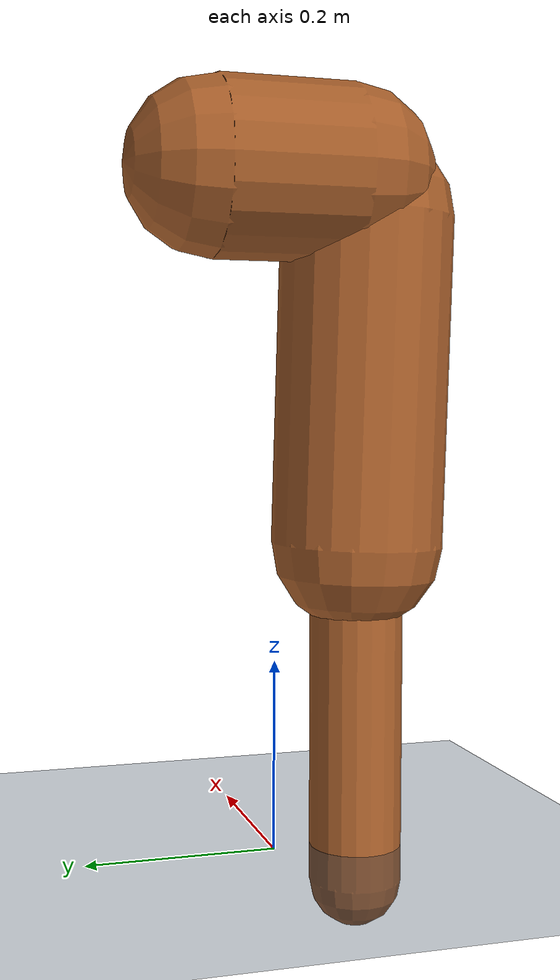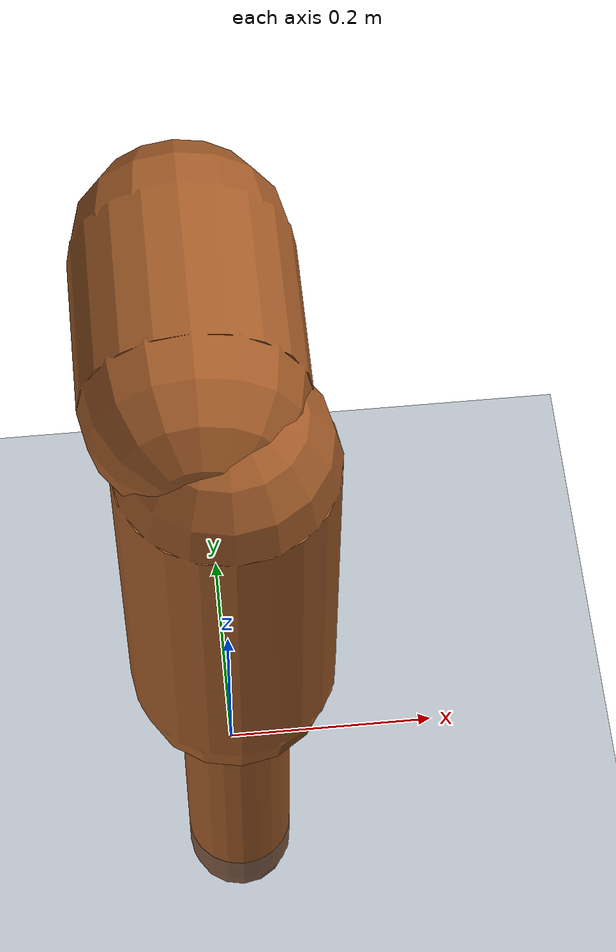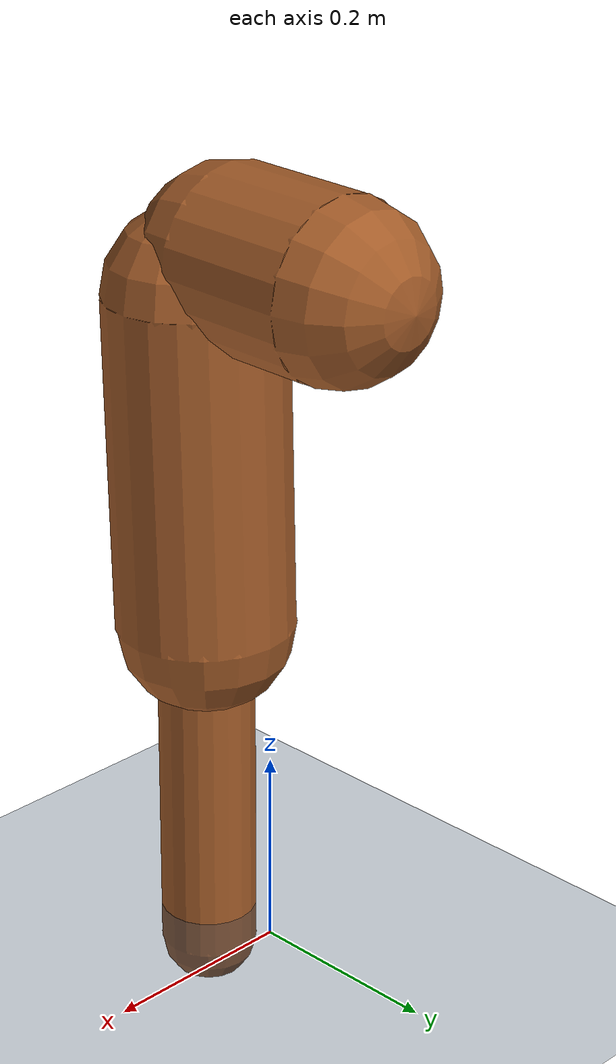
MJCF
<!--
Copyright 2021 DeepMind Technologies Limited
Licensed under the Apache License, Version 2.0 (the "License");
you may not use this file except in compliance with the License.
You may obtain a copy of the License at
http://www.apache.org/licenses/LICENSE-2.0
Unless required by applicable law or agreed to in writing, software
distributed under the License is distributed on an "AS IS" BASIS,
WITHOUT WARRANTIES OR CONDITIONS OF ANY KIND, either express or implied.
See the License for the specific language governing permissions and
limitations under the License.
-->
<mujoco model="SimpleLeg">
  <option timestep="0.005"/>

  <visual>
    <map force="0.1" zfar="30"/>
    <rgba haze="0.15 0.25 0.35 1"/>
    <global offwidth="2560" offheight="1440" elevation="-20" azimuth="120"/>
  </visual>

  <statistic center="0 0 0"/>

  <asset>
    <texture type="skybox" builtin="gradient" rgb1=".3 .5 .7" rgb2="0 0 0" width="32" height="512"/>
    <texture name="body" type="cube" builtin="flat" mark="cross" width="127" height="1278" rgb1="0.8 0.6 0.4" rgb2="0.8 0.6 0.4" markrgb="1 1 1" random="0.01"/>
    <material name="body" texture="body" texuniform="true" rgba="0.8 0.6 .4 1"/>
    <texture name="grid" type="2d" builtin="checker" width="512" height="512" rgb1=".1 .2 .3" rgb2=".2 .3 .4"/>
    <material name="grid" texture="grid" texrepeat="1 1" texuniform="true" reflectance=".2"/>
  </asset>

  <default>
    <motor ctrlrange="-1 1" ctrllimited="true"/>
  </default>

    <default>
    <motor ctrlrange="-1 1" ctrllimited="true"/>
    <default class="body">
      <!-- geoms -->
      <geom type="capsule" condim="1" friction=".7" solimp=".9 .99 .003" solref=".015 1" material="body"/>
      <default class="thigh">
        <geom size=".06"/>
      </default>
      <default class="shin">
        <geom fromto="0 0 0 0 0 -.3"  size=".049"/>
      </default>
      <default class="foot">
        <geom size=".027"/>
        <default class="foot1">
          <geom fromto="-.07 -.01 0 .14 -.03 0"/>
        </default>
        <default class="foot2">
          <geom fromto="-.07 .01 0 .14  .03 0"/>
        </default>
      </default>
      <default class="arm_upper">
        <geom size=".04"/>
      </default>
      <default class="arm_lower">
        <geom size=".031"/>
      </default>
      <default class="hand">
        <geom type="sphere" size=".04"/>
      </default>

      <!-- joints -->
      <joint type="hinge" damping=".2" stiffness="1" armature=".01" limited="true" solimplimit="0 .99 .01"/>
      <default class="joint_big">
        <joint damping="5" stiffness="10"/>
        <default class="hip_x">
          <joint range="-30 10"/>
        </default>
        <default class="hip_z">
          <joint range="-60 35"/>
        </default>
        <default class="hip_y">
          <joint axis="0 1 0" range="-150 20"/>
        </default>
        <default class="joint_big_stiff">
          <joint stiffness="20"/>
        </default>
      </default>
      <default class="knee">
        <joint pos="0 0 .02" axis="0 -1 0" range="-160 2"/>
      </default>
      <default class="ankle">
        <joint range="-50 50"/>
        <default class="ankle_y">
          <joint pos="0 0 .08" axis="0 1 0" stiffness="6"/>
        </default>
        <default class="ankle_x">
          <joint pos="0 0 .04" stiffness="3"/>
        </default>
      </default>
      <default class="shoulder">
        <joint range="-85 60"/>
      </default>
      <default class="elbow">
        <joint range="-100 50" stiffness="0"/>
      </default>
    </default>
  </default>

    <worldbody>
        <geom name="floor" size="0 0 .05" type="plane" material="grid" condim="3"/>
        <body name="torso" pos="0 0 0.7">
            <light name="top" pos="0 0 2" mode="trackcom"/>
            <joint name="root" axis="0 0 1"       range="-0.1 0.1"        type="slide" limited="true"/>
            <geom name="butt" fromto="-.02 -.07 0 -.02 .07 0" size=".09" type="capsule" condim="1" friction=".7" solimp=".9 .9 .9" solref=".015 1" material="body"/>
            <body name="thigh_right" pos="0 -.1 -.04">
                <joint name="hip" axis="0 1 0" range="-30 10"        type="hinge" armature=".01" limited="true" solimplimit="0 .99 .01"        damping="5" stiffness="10"/>
                <inertial mass="1" pos="0 0 0.09" diaginertia="0.0138 0.0138 0.00744"/>
                <geom name="thigh_right" fromto="0 0 0 0 .01 -.34" size=".09" type="capsule" condim="1" friction=".7" solimp=".9 .9 .9" solref=".015 1" material="body"/>
                <body name="shin_right" pos="0 .01 -.4">
                    <joint name="knee_right" class="knee"/>
                    <inertial mass="1" pos="0 0 0.09" diaginertia="0.0138 0.0138 0.00744"/>
                    <geom name="shin_right" class="shin"/>
                </body>
            </body>
        </body>
    </worldbody>

    <actuator>
        <motor name="knee_right"        gear="100"  joint="knee_right"/>
        <motor name="hip"               gear="100"  joint="hip"/>
    </actuator>

    <keyframe>
        <key name="squat" qpos="-0.017 -0.4 -1.1"/>
    </keyframe>
</mujoco>
